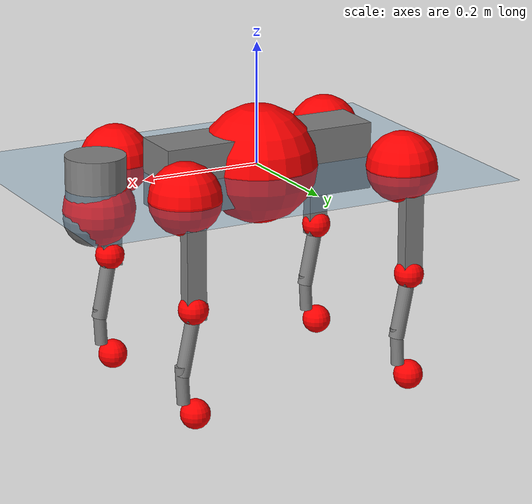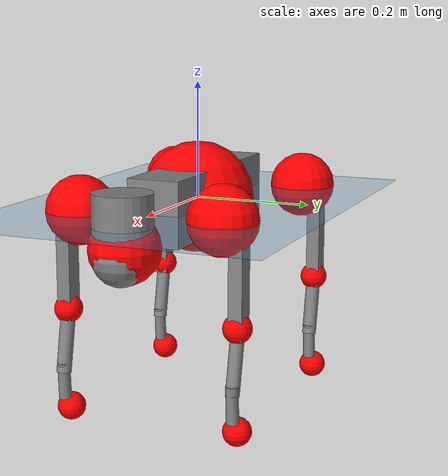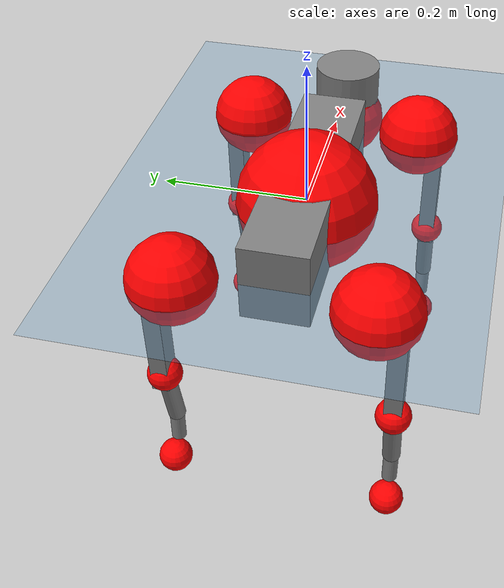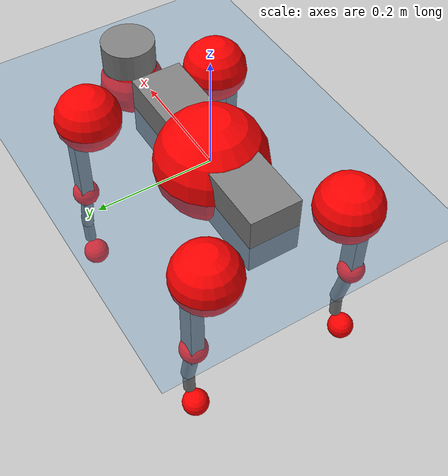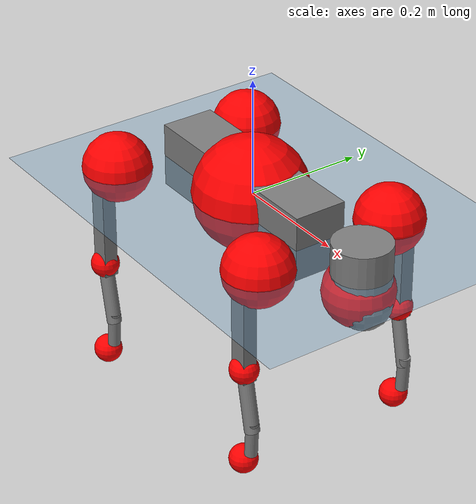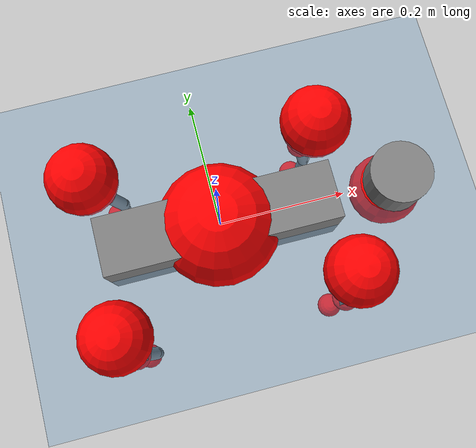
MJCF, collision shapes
<mujoco model="go2">
  <compiler angle="radian" assetdir="assets" balanceinertia="true" inertiafromgeom="false"/>

  <option timestep="0.005" density="1.2" viscosity="2e-05"/>

  <size nkey="1"/>

  <visual>
    <quality shadowsize="8192"/>
    <map shadowclip="0.5"/>
  </visual>

  <default>
    <default class="/">
      <geom contype="0" conaffinity="0" group="1" solref="-1000 -80"/>
      <site size="0.01 0.005 0.005" group="5"/>
      <general forcelimited="true" biastype="affine" gainprm="20" biasprm="0 -20 -0.5"/>
      <default class="go2">
        <joint armature="0.01" damping="0.01" frictionloss="0.2"/>
        <geom condim="1" margin="0.001"/>
        <default class="visual">
          <geom type="mesh" group="2"/>
        </default>
        <default class="collision">
          <geom group="3"/>
          <default class="foot">
            <geom size="0.022 0 0" condim="6" priority="1" friction="0.8 0.02 0.01" solimp="0.015 1 0.022"/>
          </default>
        </default>
        <default class="reward_collision_sphere">
          <geom group="5" rgba="1 0 0 1"/>
        </default>
      </default>
    </default>
  </default>

  <asset>
    <texture type="skybox" colorspace="auto" name="//unnamed_texture_0" builtin="gradient" rgb1="0.95 0.95 0.95" rgb2="0.95 0.95 0.95" width="100" height="600"/>
    <texture type="2d" colorspace="auto" name="texplane" builtin="checker" rgb1="0.345 0.575 0.748" rgb2="0.345 0.575 0.748" markrgb="1 1 1" width="512" height="512"/>
    <material name="MatPlane" class="/" texture="texplane" texuniform="true" texrepeat="2 2" specular="0.9"/>
    <material name="metal" class="/" rgba="0.9 0.95 0.95 1"/>
    <material name="black" class="/" rgba="0 0 0 1"/>
    <material name="white" class="/"/>
    <material name="gray" class="/" rgba="0.671705 0.692426 0.77427 1"/>
    <mesh name="base_0" class="/" file="base_0.obj"/>
    <mesh name="base_1" class="/" file="base_1.obj"/>
    <mesh name="base_2" class="/" file="base_2.obj"/>
    <mesh name="base_3" class="/" file="base_3.obj"/>
    <mesh name="base_4" class="/" file="base_4.obj"/>
    <mesh name="hip_0" class="/" file="hip_0.obj"/>
    <mesh name="hip_1" class="/" file="hip_1.obj"/>
    <mesh name="thigh_0" class="/" file="thigh_0.obj"/>
    <mesh name="thigh_1" class="/" file="thigh_1.obj"/>
    <mesh name="thigh_mirror_0" class="/" file="thigh_mirror_0.obj"/>
    <mesh name="thigh_mirror_1" class="/" file="thigh_mirror_1.obj"/>
    <mesh name="calf_0" class="/" file="calf_0.obj"/>
    <mesh name="calf_1" class="/" file="calf_1.obj"/>
    <mesh name="calf_mirror_0" class="/" file="calf_mirror_0.obj"/>
    <mesh name="calf_mirror_1" class="/" file="calf_mirror_1.obj"/>
    <mesh name="foot" class="/" file="foot.obj"/>
  </asset>

  <worldbody>
    <geom name="floor" class="/" size="100 100 0.125" type="plane" group="0" material="MatPlane"/>
    <light name="toplight_shadow" class="/" pos="0 0 5" dir="0.0990148 0.0990148 -0.990148" type="directional" ambient="0.04 0.04 0.04" diffuse="0.55 0.55 0.55" specular="0.12 0.12 0.12"/>
    <light name="toplight_fill" class="/" pos="0 0 5" dir="0.0990148 0.0990148 -0.990148" type="directional" castshadow="false" ambient="0.04 0.04 0.04" diffuse="0.3 0.3 0.3" specular="0.08 0.08 0.08"/>
    <body name="trunk" childclass="go2" pos="-0.00247552 -0.000951582 0.000939709" quat="1 -0.000684961 6.47408e-05 -0.000498993">
      <inertial pos="0.0183087 -0.000500062 -0.00443549" quat="-0.000602879 0.713362 -0.00657123 0.700765" mass="6.18691" diaginertia="0.108393 0.152606 0.00880981"/>
      <joint name="//unnamed_joint_0" type="free" armature="0" damping="0" frictionloss="0"/>
      <geom name="//unnamed_geom_1" class="visual" material="black" mesh="base_0"/>
      <geom name="//unnamed_geom_2" class="visual" material="black" mesh="base_1"/>
      <geom name="//unnamed_geom_3" class="visual" material="black" mesh="base_2"/>
      <geom name="//unnamed_geom_4" class="visual" material="white" mesh="base_3"/>
      <geom name="//unnamed_geom_5" class="visual" material="gray" mesh="base_4"/>
      <geom name="trunk_1" class="collision" size="0.181907 0.0452109 0.0551234" type="box"/>
      <geom name="trunk_2" class="collision" size="0.0483539 0.0435185" pos="0.284929 0 0.00810839" type="cylinder"/>
      <geom name="trunk_3" class="collision" size="0.0454526" pos="0.292927 0 -0.0486503"/>
      <geom name="//unnamed_geom_9" class="reward_collision_sphere" size="0.0967077"/>
      <geom name="//unnamed_geom_10" class="reward_collision_sphere" size="0.0580246" pos="0.279931 0 -0.0364878"/>
      <site name="imu" pos="-0.0252454 -0.00506612 0.0391606" size="0.00967077"/>
      <camera name="track" pos="0 -2.18128 0" quat="0.707107 0.707107 0 0" mode="trackcom"/>
      <camera name="ego_camera" pos="0.311923 0 0.0364878" quat="-0.5 -0.5 0.5 0.5"/>
      <body name="FL_hip" pos="0.192628 0.0504898 0.00201025" quat="0.999999 9.83093e-06 0.000864066 -0.000760599">
        <inertial pos="-0.00792124 0.00276561 1.36122e-05" quat="0.49632 0.498025 0.507363 0.498217" mass="0.62765" diaginertia="0.000907141 0.000915753 0.000172303"/>
        <joint name="FL_hip_joint" pos="0 0 0" axis="0.999995 -0.003066 0.00122112" stiffness="0.00375332" range="-1.05737 1.00624" armature="0.0103522" damping="0" frictionloss="0.185523"/>
        <geom name="//unnamed_geom_11" class="visual" material="metal" mesh="hip_0"/>
        <geom name="//unnamed_geom_12" class="visual" material="gray" mesh="hip_1"/>
        <geom name="//unnamed_geom_13" class="collision" size="0.0444856 0.0193415" pos="0 0.0872513 0" quat="0.707107 0.707107 0 0" type="cylinder"/>
        <geom name="//unnamed_geom_14" class="reward_collision_sphere" size="0.0580246" pos="0 0.0763449 0"/>
        <body name="FL_thigh" pos="-7.83531e-06 0.103648 0.00184976" quat="1 -0.000158696 -0.000150044 9.40821e-05">
          <inertial pos="-0.00132372 -0.0237654 -0.0242668" quat="0.829947 0.0859372 -0.0223488 0.55073" mass="1.05047" diaginertia="0.00588782 0.0088827 0.00031084"/>
          <joint name="FL_thigh_joint" pos="0 0 0" axis="-0.00339044 0.999994 0.000611026" stiffness="0.0144387" range="-1.60161 3.5248" armature="0.0103173" damping="0" frictionloss="0.189098"/>
          <geom name="//unnamed_geom_15" class="visual" material="metal" mesh="thigh_0"/>
          <geom name="//unnamed_geom_16" class="visual" material="gray" mesh="thigh_1"/>
          <geom name="//unnamed_geom_17" class="collision" size="0.102994 0.0118467 0.0164403" pos="0 0 -0.0863543" quat="0.707107 0 0.707107 0" type="box"/>
          <body name="FL_calf" pos="0.000330891 -0.00138777 -0.173512" quat="1 -0.000174583 0.000104837 8.1812e-05">
            <inertial pos="0.00652182 -0.00058228 -0.115705" quat="0.703689 0.00496616 -0.00624107 0.710463" mass="0.215601" diaginertia="0.00150809 0.00224864 1.84674e-05"/>
            <joint name="FL_calf_joint" pos="0 0 0" axis="-0.00471597 0.999954 0.00836648" range="-2.73214 -0.872549" armature="0.00972483" damping="0.00228398" frictionloss="0.192534"/>
            <geom name="//unnamed_geom_18" class="visual" material="gray" mesh="calf_0"/>
            <geom name="//unnamed_geom_19" class="visual" material="black" mesh="calf_1"/>
            <geom name="FL_calf0" class="collision" size="0.0116049 0.0580246" pos="0.00799802 0 -0.0486503" quat="0.994493 0 -0.104807 0" type="cylinder"/>
            <geom name="//unnamed_geom_21" class="collision" size="0.0106379 0.03143" pos="0.019995 0 -0.120004" quat="0.999688 0 0.0249974 0" type="cylinder"/>
            <geom name="//unnamed_geom_22" class="visual" pos="0 0 -0.172709" quat="1 0 0 0" material="black" mesh="foot"/>
            <geom name="FL_foot" class="foot" size="0.0152573" pos="-0.0019995 0 -0.172709"/>
            <geom name="//unnamed_geom_24" class="reward_collision_sphere" size="0.0241769"/>
            <geom name="//unnamed_geom_25" class="reward_collision_sphere" size="0.0241769" pos="-0.0019995 0 -0.172709"/>
            <site name="FL_foot" class="foot" pos="-0.0019995 0 -0.172709" size="0.00967077"/>
          </body>
        </body>
      </body>
      <body name="FR_hip" pos="0.194085 -0.0482069 -0.000262008" quat="1 -4.23428e-05 0.000184389 -0.000468721">
        <inertial pos="-0.00338472 -0.00294898 -0.000412165" quat="0.496886 0.505296 0.500673 0.497099" mass="0.640379" diaginertia="0.000893533 0.000937796 0.000169137"/>
        <joint name="FR_hip_joint" pos="0 0 0" axis="0.999999 0.000776832 -0.00135524" range="-1.0482 1.04989" armature="0.00842443" damping="0.0195342" frictionloss="0.217772"/>
        <geom name="//unnamed_geom_26" class="visual" pos="0 2.43752e-09 1.0455e-07" quat="4.63268e-05 1 0 0" material="metal" mesh="hip_0"/>
        <geom name="//unnamed_geom_27" class="visual" pos="0 3.95151e-09 -2.58593e-07" quat="4.63268e-05 1 0 0" material="gray" mesh="hip_1"/>
        <geom name="//unnamed_geom_28" class="collision" size="0.0444856 0.0193415" pos="0 -0.0872513 0" quat="0.707107 0.707107 0 0" type="cylinder"/>
        <geom name="//unnamed_geom_29" class="reward_collision_sphere" size="0.0580246" pos="0 -0.0763449 0"/>
        <body name="FR_thigh" pos="0.000707268 -0.102969 0.00275375" quat="0.999999 0.00097782 0.000457536 -0.000423654">
          <inertial pos="-0.0045791 0.0218787 -0.0254137" quat="0.551709 -0.0195997 0.0844096 0.829523" mass="1.02098" diaginertia="0.00599411 0.00921514 0.000305466"/>
          <joint name="FR_thigh_joint" pos="0 0 0" axis="0.00125632 -0.999999 0.000948216" range="-3.4702 1.58768" armature="0.00975199" damping="0.0147255" frictionloss="0.185855"/>
          <geom name="//unnamed_geom_30" class="visual" material="metal" mesh="thigh_mirror_0"/>
          <geom name="//unnamed_geom_31" class="visual" material="gray" mesh="thigh_mirror_1"/>
          <geom name="//unnamed_geom_32" class="collision" size="0.102994 0.0118467 0.0164403" pos="0 0 -0.0863543" quat="0.707107 0 0.707107 0" type="box"/>
          <body name="FR_calf" pos="0.000365183 -4.93581e-05 -0.172445" quat="1 -3.11713e-05 -4.01497e-05 -4.79066e-05">
            <inertial pos="0.00608994 0.000466603 -0.113883" quat="0.703566 -0.00464895 0.00108568 0.710614" mass="0.22052" diaginertia="0.00155866 0.00227681 1.91293e-05"/>
            <joint name="FR_calf_joint" pos="0 0 0" axis="0.00417075 -0.999949 0.00916361" range="0.840541 2.71156" armature="0.00992388" damping="0.0103853" frictionloss="0.185171"/>
            <geom name="//unnamed_geom_33" class="visual" material="gray" mesh="calf_mirror_0"/>
            <geom name="//unnamed_geom_34" class="visual" material="black" mesh="calf_mirror_1"/>
            <geom name="FR_calf0" class="collision" size="0.012572 0.0580246" pos="0.00999752 0 -0.0486503" quat="0.995004 0 -0.0998334 0" type="cylinder"/>
            <geom name="//unnamed_geom_36" class="collision" size="0.0106379 0.03143" pos="0.019995 0 -0.120004" quat="0.999688 0 0.0249974 0" type="cylinder"/>
            <geom name="//unnamed_geom_37" class="visual" pos="0 0 -0.172709" quat="1 0 0 0" material="black" mesh="foot"/>
            <geom name="FR_foot" class="foot" size="0.0235269" pos="-0.0019995 0 -0.172709"/>
            <geom name="//unnamed_geom_39" class="reward_collision_sphere" size="0.0241769"/>
            <geom name="//unnamed_geom_40" class="reward_collision_sphere" size="0.0241769" pos="-0.0019995 0 -0.172709"/>
            <site name="FR_foot" class="foot" pos="-0.0019995 0 -0.172709" size="0.00967077"/>
          </body>
        </body>
      </body>
      <body name="RL_hip" pos="-0.192437 0.0497952 0.000231297" quat="0.999999 0.000801221 -0.000371321 0.000939616">
        <inertial pos="0.00784763 0.00225332 -8.10316e-06" quat="0.505577 0.498394 0.497019 0.498967" mass="0.610993" diaginertia="0.000887463 0.000938396 0.000171044"/>
        <joint name="RL_hip_joint" pos="0 0 0" axis="-0.999894 0.00247941 -0.0143241" stiffness="0.00200514" range="-1.03857 1.04948" armature="0.00961997" damping="0.00916597" frictionloss="0.184004"/>
        <geom name="//unnamed_geom_41" class="visual" pos="-1.64574e-09 0 -3.22602e-07" quat="4.63268e-05 0 1 0" material="metal" mesh="hip_0"/>
        <geom name="//unnamed_geom_42" class="visual" pos="-2.66794e-09 0 -2.86102e-07" quat="4.63268e-05 0 1 0" material="gray" mesh="hip_1"/>
        <geom name="//unnamed_geom_43" class="collision" size="0.0444856 0.0193415" pos="0 0.0872513 0" quat="0.707107 0.707107 0 0" type="cylinder"/>
        <geom name="//unnamed_geom_44" class="reward_collision_sphere" size="0.0580246" pos="0 0.0763449 0"/>
        <body name="RL_thigh" pos="-0.00227596 0.103244 0.000839903" quat="0.999999 0.00087059 -0.000354292 0.000726404">
          <inertial pos="-0.00339357 -0.0239192 -0.0263581" quat="0.829996 0.0776028 -0.0125548 0.552202" mass="1.01846" diaginertia="0.00587311 0.00885054 0.000304229"/>
          <joint name="RL_thigh_joint" pos="0 0 0" axis="-0.000278395 0.999998 0.00193177" stiffness="0.00432985" range="-0.524744 4.5231" armature="0.00935027" damping="0" frictionloss="0.203483"/>
          <geom name="//unnamed_geom_45" class="visual" material="metal" mesh="thigh_0"/>
          <geom name="//unnamed_geom_46" class="visual" material="gray" mesh="thigh_1"/>
          <geom name="//unnamed_geom_47" class="collision" size="0.102994 0.0118467 0.0164403" pos="0 0 -0.0863543" quat="0.707107 0 0.707107 0" type="box"/>
          <body name="RL_calf" pos="0.000593706 -0.00173511 -0.173361" quat="1 4.74423e-05 -1.06241e-05 2.84472e-05">
            <inertial pos="0.0063395 -0.000497505 -0.114527" quat="0.710956 0.00179872 -0.00536225 0.703213" mass="0.218082" diaginertia="0.00148434 0.00225704 1.84445e-05"/>
            <joint name="RL_calf_joint" pos="0 0 0" axis="5.64489e-05 0.999996 -0.00289299" stiffness="0.00101413" range="-2.70206 -0.836197" armature="0.00997862" damping="0" frictionloss="0.19338"/>
            <geom name="//unnamed_geom_48" class="visual" material="gray" mesh="calf_0"/>
            <geom name="//unnamed_geom_49" class="visual" material="black" mesh="calf_1"/>
            <geom name="RL_calf0" class="collision" size="0.012572 0.0580246" pos="0.00999752 0 -0.0486503" quat="0.995004 0 -0.0998334 0" type="cylinder"/>
            <geom name="//unnamed_geom_51" class="collision" size="0.0106379 0.03143" pos="0.019995 0 -0.120004" quat="0.999688 0 0.0249974 0" type="cylinder"/>
            <geom name="//unnamed_geom_52" class="visual" pos="0 0 -0.172709" quat="1 0 0 0" material="black" mesh="foot"/>
            <geom name="RL_foot" class="foot" size="0.0201494" pos="-0.0019995 0 -0.172709"/>
            <geom name="//unnamed_geom_54" class="reward_collision_sphere" size="0.0241769"/>
            <geom name="//unnamed_geom_55" class="reward_collision_sphere" size="0.0241769" pos="-0.0019995 0 -0.172709"/>
            <site name="RL_foot" class="foot" pos="-0.0019995 0 -0.172709" size="0.00967077"/>
          </body>
        </body>
      </body>
      <body name="RR_hip" pos="-0.193246 -0.0534681 -0.000680349" quat="1 -0.000342845 -0.000271769 8.20718e-05">
        <inertial pos="0.00514135 -0.000321846 9.59294e-05" quat="0.497581 0.505348 0.498942 0.498089" mass="0.614488" diaginertia="0.000885862 0.000926939 0.000170482"/>
        <joint name="RR_hip_joint" pos="0 0 0" axis="-0.999997 0.00222366 0.000245102" stiffness="0.00340427" range="-1.05142 1.04965" armature="0.0109574" damping="0.0188552" frictionloss="0.173433"/>
        <geom name="//unnamed_geom_56" class="visual" pos="1.64888e-09 2.43752e-09 -4.27153e-07" quat="2.14617e-09 4.63268e-05 4.63268e-05 -1" material="metal" mesh="hip_0"/>
        <geom name="//unnamed_geom_57" class="visual" pos="2.66015e-09 3.95151e-09 -2.75095e-08" quat="2.14617e-09 4.63268e-05 4.63268e-05 -1" material="gray" mesh="hip_1"/>
        <geom name="//unnamed_geom_58" class="collision" size="0.0444856 0.0193415" pos="0 -0.0872513 0" quat="0.707107 0.707107 0 0" type="cylinder"/>
        <geom name="//unnamed_geom_59" class="reward_collision_sphere" size="0.0580246" pos="0 -0.0763449 0"/>
        <body name="RR_thigh" pos="-0.000336889 -0.104731 -0.00279614" quat="1 -3.25049e-05 0.000264204 -2.62231e-05">
          <inertial pos="-0.00350331 0.0247991 -0.0263359" quat="0.551331 -0.0198633 0.0844285 0.829766" mass="1.06161" diaginertia="0.00607967 0.00915228 0.000303048"/>
          <joint name="RR_thigh_joint" pos="0 0 0" axis="-0.000949521 -0.999999 -0.00130571" range="-4.58312 0.531972" armature="0.00959464" damping="0.0210805" frictionloss="0.202563"/>
          <geom name="//unnamed_geom_60" class="visual" material="metal" mesh="thigh_mirror_0"/>
          <geom name="//unnamed_geom_61" class="visual" material="gray" mesh="thigh_mirror_1"/>
          <geom name="//unnamed_geom_62" class="collision" size="0.102994 0.0118467 0.0164403" pos="0 0 -0.0863543" quat="0.707107 0 0.707107 0" type="box"/>
          <body name="RR_calf" pos="-0.00251689 -0.000331357 -0.173172" quat="1 -9.39891e-06 -7.33056e-06 1.87406e-05">
            <inertial pos="0.00866722 0.000890273 -0.115009" quat="0.703203 -0.0089137 0.00311918 0.710927" mass="0.218212" diaginertia="0.00143951 0.00215612 1.8197e-05"/>
            <joint name="RR_calf_joint" pos="0 0 0" axis="-0.00181497 -0.999966 0.00799859" range="0.862093 2.7774" armature="0.00888157" damping="0.0131511" frictionloss="0.183965"/>
            <geom name="//unnamed_geom_63" class="visual" material="gray" mesh="calf_mirror_0"/>
            <geom name="//unnamed_geom_64" class="visual" material="black" mesh="calf_mirror_1"/>
            <geom name="RR_calf0" class="collision" size="0.012572 0.0580246" pos="0.00999752 0 -0.0486503" quat="0.995004 0 -0.0998334 0" type="cylinder"/>
            <geom name="//unnamed_geom_66" class="collision" size="0.0106379 0.03143" pos="0.019995 0 -0.120004" quat="0.999688 0 0.0249974 0" type="cylinder"/>
            <geom name="//unnamed_geom_67" class="visual" pos="0 0 -0.172709" quat="1 0 0 0" material="black" mesh="foot"/>
            <geom name="RR_foot" class="foot" size="0.0229739" pos="-0.0019995 0 -0.172709"/>
            <geom name="//unnamed_geom_69" class="reward_collision_sphere" size="0.0241769"/>
            <geom name="//unnamed_geom_70" class="reward_collision_sphere" size="0.0241769" pos="-0.0019995 0 -0.172709"/>
            <site name="RR_foot" class="foot" pos="-0.0019995 0 -0.172709" size="0.00967077"/>
          </body>
        </body>
      </body>
    </body>
  </worldbody>

  <contact>
    <pair class="/" geom1="floor" geom2="FL_foot" name="//unnamed_contact_0"/>
    <pair class="/" geom1="floor" geom2="FR_foot" name="//unnamed_contact_1"/>
    <pair class="/" geom1="floor" geom2="RL_foot" name="//unnamed_contact_2"/>
    <pair class="/" geom1="floor" geom2="RR_foot" name="//unnamed_contact_3"/>
  </contact>

  <actuator>
    <general name="FL_hip" class="/" joint="FL_hip_joint" forcerange="-22.394 22.394" gainprm="19.4237" biasprm="0 -19.4237 -0.483249"/>
    <general name="FL_thigh" class="/" joint="FL_thigh_joint" forcerange="-23.2022 23.2022" gainprm="19.4237" biasprm="0 -19.4237 -0.483249"/>
    <general name="FL_calf" class="/" joint="FL_calf_joint" forcerange="-44.16 44.16" gainprm="19.4237" biasprm="0 -19.4237 -0.483249"/>
    <general name="FR_hip" class="/" joint="FR_hip_joint" forcerange="-25.0781 25.0781" gainprm="19.4237" biasprm="0 -19.4237 -0.483249"/>
    <general name="FR_thigh" class="/" joint="FR_thigh_joint" forcerange="-22.7306 22.7306" gainprm="19.4237" biasprm="0 -19.4237 -0.483249"/>
    <general name="FR_calf" class="/" joint="FR_calf_joint" forcerange="-41.4566 41.4566" gainprm="19.4237" biasprm="0 -19.4237 -0.483249"/>
    <general name="RL_hip" class="/" joint="RL_hip_joint" forcerange="-22.6172 22.6172" gainprm="19.4237" biasprm="0 -19.4237 -0.483249"/>
    <general name="RL_thigh" class="/" joint="RL_thigh_joint" forcerange="-22.595 22.595" gainprm="19.4237" biasprm="0 -19.4237 -0.483249"/>
    <general name="RL_calf" class="/" joint="RL_calf_joint" forcerange="-44.4292 44.4292" gainprm="19.4237" biasprm="0 -19.4237 -0.483249"/>
    <general name="RR_hip" class="/" joint="RR_hip_joint" forcerange="-23.0874 23.0874" gainprm="19.4237" biasprm="0 -19.4237 -0.483249"/>
    <general name="RR_thigh" class="/" joint="RR_thigh_joint" forcerange="-23.832 23.832" gainprm="19.4237" biasprm="0 -19.4237 -0.483249"/>
    <general name="RR_calf" class="/" joint="RR_calf_joint" forcerange="-47.9544 47.9544" gainprm="19.4237" biasprm="0 -19.4237 -0.483249"/>
  </actuator>

  <sensor>
    <gyro site="imu" name="imu_angular_velocity"/>
    <velocimeter site="imu" name="imu_linear_velocity"/>
    <framelinvel objtype="site" objname="FL_foot" name="FL_foot_global_linear_velocity"/>
    <framelinvel objtype="site" objname="FR_foot" name="FR_foot_global_linear_velocity"/>
    <framelinvel objtype="site" objname="RL_foot" name="RL_foot_global_linear_velocity"/>
    <framelinvel objtype="site" objname="RR_foot" name="RR_foot_global_linear_velocity"/>
  </sensor>

  <keyframe>
    <key name="home" qpos="0 0 0.325 1 0 0 0 0.1 0.8 -1.5 -0.1 -0.8 1.5 -0.1 0.8 -1.5 0.1 -0.8 1.5"/>
  </keyframe>
</mujoco>
